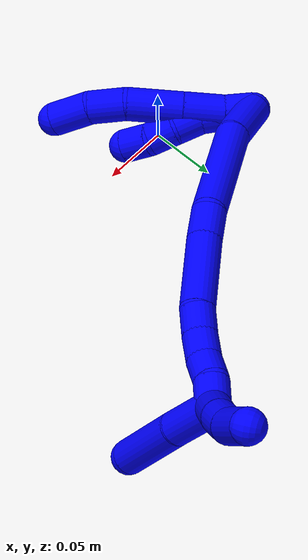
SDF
<sdf version="1.7">
 <world name="default">
  <model name="1">
   <static>0</static>
   <link name="1">
    <collision name="collision-cylinder-e_1_2_8">
     <pose>0.000308 0.004281 -0.009701 -2.72599 0.02908 -0.137713</pose>
     <geometry><cylinder><radius>0.0125</radius><length>0.021217</length></cylinder></geometry>
     <surface>
      <friction><ode><mu>1.16</mu><mu2>1.16</mu2><slip1>0</slip1><slip2>0</slip2></ode></friction>
      <contact><ode><kp>1e+06</kp><kd>1</kd><max_vel>0</max_vel><min_depth>0.001</min_depth></ode></contact>
     </surface>
    </collision>
    <visual name="visual-cylinder-e_1_2_8">
     <pose>0.000308 0.004281 -0.009701 -2.72599 0.02908 -0.137713</pose>
     <geometry><cylinder><radius>0.0125</radius><length>0.021217</length></cylinder></geometry>
     <material><ambient>0 0 1 1</ambient></material>
    </visual>
    <collision name="collision-cylinder-e_2_8_9">
     <pose>0.002566 0.012786 -0.033921 -2.85853 0.128222 -0.846643</pose>
     <geometry><cylinder><radius>0.0125</radius><length>0.03049</length></cylinder></geometry>
     <surface>
      <friction><ode><mu>1.16</mu><mu2>1.16</mu2><slip1>0</slip1><slip2>0</slip2></ode></friction>
      <contact><ode><kp>1e+06</kp><kd>1</kd><max_vel>0</max_vel><min_depth>0.001</min_depth></ode></contact>
     </surface>
    </collision>
    <visual name="visual-cylinder-e_2_8_9">
     <pose>0.002566 0.012786 -0.033921 -2.85853 0.128222 -0.846643</pose>
     <geometry><cylinder><radius>0.0125</radius><length>0.03049</length></cylinder></geometry>
     <material><ambient>0 0 1 1</ambient></material>
    </visual>
    <collision name="collision-cylinder-e_3_9_10">
     <pose>0.006511 0.022196 -0.06837 -2.88698 0.096578 -0.722016</pose>
     <geometry><cylinder><radius>0.0125</radius><length>0.041384</length></cylinder></geometry>
     <surface>
      <friction><ode><mu>1.16</mu><mu2>1.16</mu2><slip1>0</slip1><slip2>0</slip2></ode></friction>
      <contact><ode><kp>1e+06</kp><kd>1</kd><max_vel>0</max_vel><min_depth>0.001</min_depth></ode></contact>
     </surface>
    </collision>
    <visual name="visual-cylinder-e_3_9_10">
     <pose>0.006511 0.022196 -0.06837 -2.88698 0.096578 -0.722016</pose>
     <geometry><cylinder><radius>0.0125</radius><length>0.041384</length></cylinder></geometry>
     <material><ambient>0 0 1 1</ambient></material>
    </visual>
    <collision name="collision-cylinder-e_4_10_11">
     <pose>0.006267 0.030779 -0.101476 -2.88936 -0.163138 1.14539</pose>
     <geometry><cylinder><radius>0.0125</radius><length>0.027575</length></cylinder></geometry>
     <surface>
      <friction><ode><mu>1.16</mu><mu2>1.16</mu2><slip1>0</slip1><slip2>0</slip2></ode></friction>
      <contact><ode><kp>1e+06</kp><kd>1</kd><max_vel>0</max_vel><min_depth>0.001</min_depth></ode></contact>
     </surface>
    </collision>
    <visual name="visual-cylinder-e_4_10_11">
     <pose>0.006267 0.030779 -0.101476 -2.88936 -0.163138 1.14539</pose>
     <geometry><cylinder><radius>0.0125</radius><length>0.027575</length></cylinder></geometry>
     <material><ambient>0 0 1 1</ambient></material>
    </visual>
    <collision name="collision-cylinder-e_5_11_6">
     <pose>-0.00167 0.038332 -0.12751 -2.82888 -0.398996 1.81713</pose>
     <geometry><cylinder><radius>0.0125</radius><length>0.029334</length></cylinder></geometry>
     <surface>
      <friction><ode><mu>1.16</mu><mu2>1.16</mu2><slip1>0</slip1><slip2>0</slip2></ode></friction>
      <contact><ode><kp>1e+06</kp><kd>1</kd><max_vel>0</max_vel><min_depth>0.001</min_depth></ode></contact>
     </surface>
    </collision>
    <visual name="visual-cylinder-e_5_11_6">
     <pose>-0.00167 0.038332 -0.12751 -2.82888 -0.398996 1.81713</pose>
     <geometry><cylinder><radius>0.0125</radius><length>0.029334</length></cylinder></geometry>
     <material><ambient>0 0 1 1</ambient></material>
    </visual>
    <collision name="collision-cylinder-e_1_2_12">
     <pose>-0.001452 0.008024 -0.018074 -2.72379 -0.073289 0.342479</pose>
     <geometry><cylinder><radius>0.0125</radius><length>0.039657</length></cylinder></geometry>
     <surface>
      <friction><ode><mu>1.16</mu><mu2>1.16</mu2><slip1>0</slip1><slip2>0</slip2></ode></friction>
      <contact><ode><kp>1e+06</kp><kd>1</kd><max_vel>0</max_vel><min_depth>0.001</min_depth></ode></contact>
     </surface>
    </collision>
    <visual name="visual-cylinder-e_1_2_12">
     <pose>-0.001452 0.008024 -0.018074 -2.72379 -0.073289 0.342479</pose>
     <geometry><cylinder><radius>0.0125</radius><length>0.039657</length></cylinder></geometry>
     <material><ambient>0 0 1 1</ambient></material>
    </visual>
    <collision name="collision-cylinder-e_2_12_13">
     <pose>-0.004448 0.022405 -0.043884 -2.4537 -0.153009 0.421655</pose>
     <geometry><cylinder><radius>0.0125</radius><length>0.020264</length></cylinder></geometry>
     <surface>
      <friction><ode><mu>1.16</mu><mu2>1.16</mu2><slip1>0</slip1><slip2>0</slip2></ode></friction>
      <contact><ode><kp>1e+06</kp><kd>1</kd><max_vel>0</max_vel><min_depth>0.001</min_depth></ode></contact>
     </surface>
    </collision>
    <visual name="visual-cylinder-e_2_12_13">
     <pose>-0.004448 0.022405 -0.043884 -2.4537 -0.153009 0.421655</pose>
     <geometry><cylinder><radius>0.0125</radius><length>0.020264</length></cylinder></geometry>
     <material><ambient>0 0 1 1</ambient></material>
    </visual>
    <collision name="collision-cylinder-e_3_13_14">
     <pose>-0.009256 0.033583 -0.059777 -2.60784 -0.331798 1.09903</pose>
     <geometry><cylinder><radius>0.0125</radius><length>0.020041</length></cylinder></geometry>
     <surface>
      <friction><ode><mu>1.16</mu><mu2>1.16</mu2><slip1>0</slip1><slip2>0</slip2></ode></friction>
      <contact><ode><kp>1e+06</kp><kd>1</kd><max_vel>0</max_vel><min_depth>0.001</min_depth></ode></contact>
     </surface>
    </collision>
    <visual name="visual-cylinder-e_3_13_14">
     <pose>-0.009256 0.033583 -0.059777 -2.60784 -0.331798 1.09903</pose>
     <geometry><cylinder><radius>0.0125</radius><length>0.020041</length></cylinder></geometry>
     <material><ambient>0 0 1 1</ambient></material>
    </visual>
    <collision name="collision-cylinder-e_4_14_5">
     <pose>-0.016643 0.040254 -0.076875 -2.93745 -0.424098 2.25345</pose>
     <geometry><cylinder><radius>0.0125</radius><length>0.020039</length></cylinder></geometry>
     <surface>
      <friction><ode><mu>1.16</mu><mu2>1.16</mu2><slip1>0</slip1><slip2>0</slip2></ode></friction>
      <contact><ode><kp>1e+06</kp><kd>1</kd><max_vel>0</max_vel><min_depth>0.001</min_depth></ode></contact>
     </surface>
    </collision>
    <visual name="visual-cylinder-e_4_14_5">
     <pose>-0.016643 0.040254 -0.076875 -2.93745 -0.424098 2.25345</pose>
     <geometry><cylinder><radius>0.0125</radius><length>0.020039</length></cylinder></geometry>
     <material><ambient>0 0 1 1</ambient></material>
    </visual>
    <collision name="collision-cylinder-e_1_2_15">
     <pose>0.00766 0.021117 -0.001004 -1.61832 0.347623 -0.364187</pose>
     <geometry><cylinder><radius>0.0125</radius><length>0.044972</length></cylinder></geometry>
     <surface>
      <friction><ode><mu>1.16</mu><mu2>1.16</mu2><slip1>0</slip1><slip2>0</slip2></ode></friction>
      <contact><ode><kp>1e+06</kp><kd>1</kd><max_vel>0</max_vel><min_depth>0.001</min_depth></ode></contact>
     </surface>
    </collision>
    <visual name="visual-cylinder-e_1_2_15">
     <pose>0.00766 0.021117 -0.001004 -1.61832 0.347623 -0.364187</pose>
     <geometry><cylinder><radius>0.0125</radius><length>0.044972</length></cylinder></geometry>
     <material><ambient>0 0 1 1</ambient></material>
    </visual>
    <collision name="collision-cylinder-e_2_15_16">
     <pose>0.024633 0.086339 0.003876 -1.43816 0.206306 -0.180757</pose>
     <geometry><cylinder><radius>0.0125</radius><length>0.09092</length></cylinder></geometry>
     <surface>
      <friction><ode><mu>1.16</mu><mu2>1.16</mu2><slip1>0</slip1><slip2>0</slip2></ode></friction>
      <contact><ode><kp>1e+06</kp><kd>1</kd><max_vel>0</max_vel><min_depth>0.001</min_depth></ode></contact>
     </surface>
    </collision>
    <visual name="visual-cylinder-e_2_15_16">
     <pose>0.024633 0.086339 0.003876 -1.43816 0.206306 -0.180757</pose>
     <geometry><cylinder><radius>0.0125</radius><length>0.09092</length></cylinder></geometry>
     <material><ambient>0 0 1 1</ambient></material>
    </visual>
    <collision name="collision-cylinder-e_3_16_17">
     <pose>0.032575 0.142497 0.011861 -1.39824 -0.111543 0.093813</pose>
     <geometry><cylinder><radius>0.0125</radius><length>0.024621</length></cylinder></geometry>
     <surface>
      <friction><ode><mu>1.16</mu><mu2>1.16</mu2><slip1>0</slip1><slip2>0</slip2></ode></friction>
      <contact><ode><kp>1e+06</kp><kd>1</kd><max_vel>0</max_vel><min_depth>0.001</min_depth></ode></contact>
     </surface>
    </collision>
    <visual name="visual-cylinder-e_3_16_17">
     <pose>0.032575 0.142497 0.011861 -1.39824 -0.111543 0.093813</pose>
     <geometry><cylinder><radius>0.0125</radius><length>0.024621</length></cylinder></geometry>
     <material><ambient>0 0 1 1</ambient></material>
    </visual>
    <collision name="collision-cylinder-e_4_17_18">
     <pose>0.029732 0.18283 0.02065 -1.33858 -0.050631 0.040057</pose>
     <geometry><cylinder><radius>0.0125</radius><length>0.058198</length></cylinder></geometry>
     <surface>
      <friction><ode><mu>1.16</mu><mu2>1.16</mu2><slip1>0</slip1><slip2>0</slip2></ode></friction>
      <contact><ode><kp>1e+06</kp><kd>1</kd><max_vel>0</max_vel><min_depth>0.001</min_depth></ode></contact>
     </surface>
    </collision>
    <visual name="visual-cylinder-e_4_17_18">
     <pose>0.029732 0.18283 0.02065 -1.33858 -0.050631 0.040057</pose>
     <geometry><cylinder><radius>0.0125</radius><length>0.058198</length></cylinder></geometry>
     <material><ambient>0 0 1 1</ambient></material>
    </visual>
    <collision name="collision-cylinder-e_5_18_19">
     <pose>0.026328 0.220488 0.031204 -1.17969 -0.188149 0.12614</pose>
     <geometry><cylinder><radius>0.0125</radius><length>0.020648</length></cylinder></geometry>
     <surface>
      <friction><ode><mu>1.16</mu><mu2>1.16</mu2><slip1>0</slip1><slip2>0</slip2></ode></friction>
      <contact><ode><kp>1e+06</kp><kd>1</kd><max_vel>0</max_vel><min_depth>0.001</min_depth></ode></contact>
     </surface>
    </collision>
    <visual name="visual-cylinder-e_5_18_19">
     <pose>0.026328 0.220488 0.031204 -1.17969 -0.188149 0.12614</pose>
     <geometry><cylinder><radius>0.0125</radius><length>0.020648</length></cylinder></geometry>
     <material><ambient>0 0 1 1</ambient></material>
    </visual>
    <collision name="collision-cylinder-e_6_19_20">
     <pose>0.02365 0.238932 0.039505 -1.11598 -0.073852 0.046108</pose>
     <geometry><cylinder><radius>0.0125</radius><length>0.020245</length></cylinder></geometry>
     <surface>
      <friction><ode><mu>1.16</mu><mu2>1.16</mu2><slip1>0</slip1><slip2>0</slip2></ode></friction>
      <contact><ode><kp>1e+06</kp><kd>1</kd><max_vel>0</max_vel><min_depth>0.001</min_depth></ode></contact>
     </surface>
    </collision>
    <visual name="visual-cylinder-e_6_19_20">
     <pose>0.02365 0.238932 0.039505 -1.11598 -0.073852 0.046108</pose>
     <geometry><cylinder><radius>0.0125</radius><length>0.020245</length></cylinder></geometry>
     <material><ambient>0 0 1 1</ambient></material>
    </visual>
    <collision name="collision-cylinder-e_7_20_21">
     <pose>0.024231 0.256427 0.049273 -1.00646 0.132366 -0.072942</pose>
     <geometry><cylinder><radius>0.0125</radius><length>0.020121</length></cylinder></geometry>
     <surface>
      <friction><ode><mu>1.16</mu><mu2>1.16</mu2><slip1>0</slip1><slip2>0</slip2></ode></friction>
      <contact><ode><kp>1e+06</kp><kd>1</kd><max_vel>0</max_vel><min_depth>0.001</min_depth></ode></contact>
     </surface>
    </collision>
    <visual name="visual-cylinder-e_7_20_21">
     <pose>0.024231 0.256427 0.049273 -1.00646 0.132366 -0.072942</pose>
     <geometry><cylinder><radius>0.0125</radius><length>0.020121</length></cylinder></geometry>
     <material><ambient>0 0 1 1</ambient></material>
    </visual>
    <collision name="collision-cylinder-e_8_21_1">
     <pose>0.024601 0.274289 0.058188 -1.20806 -0.094561 0.06528</pose>
     <geometry><cylinder><radius>0.0125</radius><length>0.020276</length></cylinder></geometry>
     <surface>
      <friction><ode><mu>1.16</mu><mu2>1.16</mu2><slip1>0</slip1><slip2>0</slip2></ode></friction>
      <contact><ode><kp>1e+06</kp><kd>1</kd><max_vel>0</max_vel><min_depth>0.001</min_depth></ode></contact>
     </surface>
    </collision>
    <visual name="visual-cylinder-e_8_21_1">
     <pose>0.024601 0.274289 0.058188 -1.20806 -0.094561 0.06528</pose>
     <geometry><cylinder><radius>0.0125</radius><length>0.020276</length></cylinder></geometry>
     <material><ambient>0 0 1 1</ambient></material>
    </visual>
    <collision name="collision-cylinder-e_1_1_22">
     <pose>0.009019 0.285465 0.048503 -3.01116 -0.829846 2.84721</pose>
     <geometry><cylinder><radius>0.0125</radius><length>0.039645</length></cylinder></geometry>
     <surface>
      <friction><ode><mu>1.16</mu><mu2>1.16</mu2><slip1>0</slip1><slip2>0</slip2></ode></friction>
      <contact><ode><kp>1e+06</kp><kd>1</kd><max_vel>0</max_vel><min_depth>0.001</min_depth></ode></contact>
     </surface>
    </collision>
    <visual name="visual-cylinder-e_1_1_22">
     <pose>0.009019 0.285465 0.048503 -3.01116 -0.829846 2.84721</pose>
     <geometry><cylinder><radius>0.0125</radius><length>0.039645</length></cylinder></geometry>
     <material><ambient>0 0 1 1</ambient></material>
    </visual>
    <collision name="collision-cylinder-e_2_22_4">
     <pose>-0.029571 0.286894 0.016898 3.12462 -0.917526 -3.10724</pose>
     <geometry><cylinder><radius>0.0125</radius><length>0.060355</length></cylinder></geometry>
     <surface>
      <friction><ode><mu>1.16</mu><mu2>1.16</mu2><slip1>0</slip1><slip2>0</slip2></ode></friction>
      <contact><ode><kp>1e+06</kp><kd>1</kd><max_vel>0</max_vel><min_depth>0.001</min_depth></ode></contact>
     </surface>
    </collision>
    <visual name="visual-cylinder-e_2_22_4">
     <pose>-0.029571 0.286894 0.016898 3.12462 -0.917526 -3.10724</pose>
     <geometry><cylinder><radius>0.0125</radius><length>0.060355</length></cylinder></geometry>
     <material><ambient>0 0 1 1</ambient></material>
    </visual>
    <collision name="collision-cylinder-e_1_1_23">
     <pose>0.036538 0.295978 0.068453 -1.07144 0.74583 -0.456387</pose>
     <geometry><cylinder><radius>0.0125</radius><length>0.038003</length></cylinder></geometry>
     <surface>
      <friction><ode><mu>1.16</mu><mu2>1.16</mu2><slip1>0</slip1><slip2>0</slip2></ode></friction>
      <contact><ode><kp>1e+06</kp><kd>1</kd><max_vel>0</max_vel><min_depth>0.001</min_depth></ode></contact>
     </surface>
    </collision>
    <visual name="visual-cylinder-e_1_1_23">
     <pose>0.036538 0.295978 0.068453 -1.07144 0.74583 -0.456387</pose>
     <geometry><cylinder><radius>0.0125</radius><length>0.038003</length></cylinder></geometry>
     <material><ambient>0 0 1 1</ambient></material>
    </visual>
    <collision name="collision-cylinder-e_2_23_24">
     <pose>0.057053 0.316068 0.081137 -0.917381 0.657472 -0.333763</pose>
     <geometry><cylinder><radius>0.0125</radius><length>0.024941</length></cylinder></geometry>
     <surface>
      <friction><ode><mu>1.16</mu><mu2>1.16</mu2><slip1>0</slip1><slip2>0</slip2></ode></friction>
      <contact><ode><kp>1e+06</kp><kd>1</kd><max_vel>0</max_vel><min_depth>0.001</min_depth></ode></contact>
     </surface>
    </collision>
    <visual name="visual-cylinder-e_2_23_24">
     <pose>0.057053 0.316068 0.081137 -0.917381 0.657472 -0.333763</pose>
     <geometry><cylinder><radius>0.0125</radius><length>0.024941</length></cylinder></geometry>
     <material><ambient>0 0 1 1</ambient></material>
    </visual>
    <collision name="collision-cylinder-e_3_24_3">
     <pose>0.078585 0.331829 0.096466 -0.704112 0.849234 -0.329178</pose>
     <geometry><cylinder><radius>0.0125</radius><length>0.037056</length></cylinder></geometry>
     <surface>
      <friction><ode><mu>1.16</mu><mu2>1.16</mu2><slip1>0</slip1><slip2>0</slip2></ode></friction>
      <contact><ode><kp>1e+06</kp><kd>1</kd><max_vel>0</max_vel><min_depth>0.001</min_depth></ode></contact>
     </surface>
    </collision>
    <visual name="visual-cylinder-e_3_24_3">
     <pose>0.078585 0.331829 0.096466 -0.704112 0.849234 -0.329178</pose>
     <geometry><cylinder><radius>0.0125</radius><length>0.037056</length></cylinder></geometry>
     <material><ambient>0 0 1 1</ambient></material>
    </visual>
    <collision name="collision-sphere-3">
     <pose>0.092495 0.339752 0.105794 0 -0 0</pose>
     <geometry><sphere><radius>0.0125</radius></sphere></geometry>
     <surface>
      <friction><ode><mu>1.16</mu><mu2>1.16</mu2><slip1>0</slip1><slip2>0</slip2></ode></friction>
      <contact><ode><kp>1e+06</kp><kd>1</kd><max_vel>0</max_vel><min_depth>0.001</min_depth></ode></contact>
     </surface>
    </collision>
    <visual name="visual-sphere-3">
     <pose>0.092495 0.339752 0.105794 0 -0 0</pose>
     <geometry><sphere><radius>0.0125</radius></sphere></geometry>
     <material><ambient>0 0 1 1</ambient></material>
    </visual>
    <collision name="collision-sphere-24">
     <pose>0.064674 0.323906 0.087138 0 -0 0</pose>
     <geometry><sphere><radius>0.0125</radius></sphere></geometry>
     <surface>
      <friction><ode><mu>1.16</mu><mu2>1.16</mu2><slip1>0</slip1><slip2>0</slip2></ode></friction>
      <contact><ode><kp>1e+06</kp><kd>1</kd><max_vel>0</max_vel><min_depth>0.001</min_depth></ode></contact>
     </surface>
    </collision>
    <visual name="visual-sphere-24">
     <pose>0.064674 0.323906 0.087138 0 -0 0</pose>
     <geometry><sphere><radius>0.0125</radius></sphere></geometry>
     <material><ambient>0 0 1 1</ambient></material>
    </visual>
    <collision name="collision-sphere-23">
     <pose>0.049432 0.308231 0.075136 0 -0 0</pose>
     <geometry><sphere><radius>0.0125</radius></sphere></geometry>
     <surface>
      <friction><ode><mu>1.16</mu><mu2>1.16</mu2><slip1>0</slip1><slip2>0</slip2></ode></friction>
      <contact><ode><kp>1e+06</kp><kd>1</kd><max_vel>0</max_vel><min_depth>0.001</min_depth></ode></contact>
     </surface>
    </collision>
    <visual name="visual-sphere-23">
     <pose>0.049432 0.308231 0.075136 0 -0 0</pose>
     <geometry><sphere><radius>0.0125</radius></sphere></geometry>
     <material><ambient>0 0 1 1</ambient></material>
    </visual>
    <collision name="collision-sphere-4">
     <pose>-0.053535 0.286583 -0.001441 0 -0 0</pose>
     <geometry><sphere><radius>0.0125</radius></sphere></geometry>
     <surface>
      <friction><ode><mu>1.16</mu><mu2>1.16</mu2><slip1>0</slip1><slip2>0</slip2></ode></friction>
      <contact><ode><kp>1e+06</kp><kd>1</kd><max_vel>0</max_vel><min_depth>0.001</min_depth></ode></contact>
     </surface>
    </collision>
    <visual name="visual-sphere-4">
     <pose>-0.053535 0.286583 -0.001441 0 -0 0</pose>
     <geometry><sphere><radius>0.0125</radius></sphere></geometry>
     <material><ambient>0 0 1 1</ambient></material>
    </visual>
    <collision name="collision-sphere-22">
     <pose>-0.005607 0.287206 0.035237 0 -0 0</pose>
     <geometry><sphere><radius>0.0125</radius></sphere></geometry>
     <surface>
      <friction><ode><mu>1.16</mu><mu2>1.16</mu2><slip1>0</slip1><slip2>0</slip2></ode></friction>
      <contact><ode><kp>1e+06</kp><kd>1</kd><max_vel>0</max_vel><min_depth>0.001</min_depth></ode></contact>
     </surface>
    </collision>
    <visual name="visual-sphere-22">
     <pose>-0.005607 0.287206 0.035237 0 -0 0</pose>
     <geometry><sphere><radius>0.0125</radius></sphere></geometry>
     <material><ambient>0 0 1 1</ambient></material>
    </visual>
    <collision name="collision-sphere-1">
     <pose>0.023644 0.283725 0.06177 0 -0 0</pose>
     <geometry><sphere><radius>0.0125</radius></sphere></geometry>
     <surface>
      <friction><ode><mu>1.16</mu><mu2>1.16</mu2><slip1>0</slip1><slip2>0</slip2></ode></friction>
      <contact><ode><kp>1e+06</kp><kd>1</kd><max_vel>0</max_vel><min_depth>0.001</min_depth></ode></contact>
     </surface>
    </collision>
    <visual name="visual-sphere-1">
     <pose>0.023644 0.283725 0.06177 0 -0 0</pose>
     <geometry><sphere><radius>0.0125</radius></sphere></geometry>
     <material><ambient>0 0 1 1</ambient></material>
    </visual>
    <collision name="collision-sphere-21">
     <pose>0.025559 0.264853 0.054607 0 -0 0</pose>
     <geometry><sphere><radius>0.0125</radius></sphere></geometry>
     <surface>
      <friction><ode><mu>1.16</mu><mu2>1.16</mu2><slip1>0</slip1><slip2>0</slip2></ode></friction>
      <contact><ode><kp>1e+06</kp><kd>1</kd><max_vel>0</max_vel><min_depth>0.001</min_depth></ode></contact>
     </surface>
    </collision>
    <visual name="visual-sphere-21">
     <pose>0.025559 0.264853 0.054607 0 -0 0</pose>
     <geometry><sphere><radius>0.0125</radius></sphere></geometry>
     <material><ambient>0 0 1 1</ambient></material>
    </visual>
    <collision name="collision-sphere-6">
     <pose>-0.007368 0.042489 -0.140369 0 -0 0</pose>
     <geometry><sphere><radius>0.0125</radius></sphere></geometry>
     <surface>
      <friction><ode><mu>1.16</mu><mu2>1.16</mu2><slip1>0</slip1><slip2>0</slip2></ode></friction>
      <contact><ode><kp>1e+06</kp><kd>1</kd><max_vel>0</max_vel><min_depth>0.001</min_depth></ode></contact>
     </surface>
    </collision>
    <visual name="visual-sphere-6">
     <pose>-0.007368 0.042489 -0.140369 0 -0 0</pose>
     <geometry><sphere><radius>0.0125</radius></sphere></geometry>
     <material><ambient>0 0 1 1</ambient></material>
    </visual>
    <collision name="collision-sphere-11">
     <pose>0.004028 0.034174 -0.11465 0 -0 0</pose>
     <geometry><sphere><radius>0.0125</radius></sphere></geometry>
     <surface>
      <friction><ode><mu>1.16</mu><mu2>1.16</mu2><slip1>0</slip1><slip2>0</slip2></ode></friction>
      <contact><ode><kp>1e+06</kp><kd>1</kd><max_vel>0</max_vel><min_depth>0.001</min_depth></ode></contact>
     </surface>
    </collision>
    <visual name="visual-sphere-11">
     <pose>0.004028 0.034174 -0.11465 0 -0 0</pose>
     <geometry><sphere><radius>0.0125</radius></sphere></geometry>
     <material><ambient>0 0 1 1</ambient></material>
    </visual>
    <collision name="collision-sphere-10">
     <pose>0.008506 0.027383 -0.088302 0 -0 0</pose>
     <geometry><sphere><radius>0.0125</radius></sphere></geometry>
     <surface>
      <friction><ode><mu>1.16</mu><mu2>1.16</mu2><slip1>0</slip1><slip2>0</slip2></ode></friction>
      <contact><ode><kp>1e+06</kp><kd>1</kd><max_vel>0</max_vel><min_depth>0.001</min_depth></ode></contact>
     </surface>
    </collision>
    <visual name="visual-sphere-10">
     <pose>0.008506 0.027383 -0.088302 0 -0 0</pose>
     <geometry><sphere><radius>0.0125</radius></sphere></geometry>
     <material><ambient>0 0 1 1</ambient></material>
    </visual>
    <collision name="collision-sphere-9">
     <pose>0.004516 0.017009 -0.048439 0 -0 0</pose>
     <geometry><sphere><radius>0.0125</radius></sphere></geometry>
     <surface>
      <friction><ode><mu>1.16</mu><mu2>1.16</mu2><slip1>0</slip1><slip2>0</slip2></ode></friction>
      <contact><ode><kp>1e+06</kp><kd>1</kd><max_vel>0</max_vel><min_depth>0.001</min_depth></ode></contact>
     </surface>
    </collision>
    <visual name="visual-sphere-9">
     <pose>0.004516 0.017009 -0.048439 0 -0 0</pose>
     <geometry><sphere><radius>0.0125</radius></sphere></geometry>
     <material><ambient>0 0 1 1</ambient></material>
    </visual>
    <collision name="collision-sphere-2">
     <geometry><sphere><radius>0.0125</radius></sphere></geometry>
     <surface>
      <friction><ode><mu>1.16</mu><mu2>1.16</mu2><slip1>0</slip1><slip2>0</slip2></ode></friction>
      <contact><ode><kp>1e+06</kp><kd>1</kd><max_vel>0</max_vel><min_depth>0.001</min_depth></ode></contact>
     </surface>
    </collision>
    <visual name="visual-sphere-2">
     <geometry><sphere><radius>0.0125</radius></sphere></geometry>
     <material><ambient>0 0 1 1</ambient></material>
    </visual>
    <collision name="collision-sphere-19">
     <pose>0.024397 0.229864 0.03507 0 -0 0</pose>
     <geometry><sphere><radius>0.0125</radius></sphere></geometry>
     <surface>
      <friction><ode><mu>1.16</mu><mu2>1.16</mu2><slip1>0</slip1><slip2>0</slip2></ode></friction>
      <contact><ode><kp>1e+06</kp><kd>1</kd><max_vel>0</max_vel><min_depth>0.001</min_depth></ode></contact>
     </surface>
    </collision>
    <visual name="visual-sphere-19">
     <pose>0.024397 0.229864 0.03507 0 -0 0</pose>
     <geometry><sphere><radius>0.0125</radius></sphere></geometry>
     <material><ambient>0 0 1 1</ambient></material>
    </visual>
    <collision name="collision-sphere-8">
     <pose>0.000617 0.008563 -0.019403 0 -0 0</pose>
     <geometry><sphere><radius>0.0125</radius></sphere></geometry>
     <surface>
      <friction><ode><mu>1.16</mu><mu2>1.16</mu2><slip1>0</slip1><slip2>0</slip2></ode></friction>
      <contact><ode><kp>1e+06</kp><kd>1</kd><max_vel>0</max_vel><min_depth>0.001</min_depth></ode></contact>
     </surface>
    </collision>
    <visual name="visual-sphere-8">
     <pose>0.000617 0.008563 -0.019403 0 -0 0</pose>
     <geometry><sphere><radius>0.0125</radius></sphere></geometry>
     <material><ambient>0 0 1 1</ambient></material>
    </visual>
    <collision name="collision-sphere-12">
     <pose>-0.002904 0.016048 -0.036148 0 -0 0</pose>
     <geometry><sphere><radius>0.0125</radius></sphere></geometry>
     <surface>
      <friction><ode><mu>1.16</mu><mu2>1.16</mu2><slip1>0</slip1><slip2>0</slip2></ode></friction>
      <contact><ode><kp>1e+06</kp><kd>1</kd><max_vel>0</max_vel><min_depth>0.001</min_depth></ode></contact>
     </surface>
    </collision>
    <visual name="visual-sphere-12">
     <pose>-0.002904 0.016048 -0.036148 0 -0 0</pose>
     <geometry><sphere><radius>0.0125</radius></sphere></geometry>
     <material><ambient>0 0 1 1</ambient></material>
    </visual>
    <collision name="collision-sphere-13">
     <pose>-0.005992 0.028763 -0.051621 0 -0 0</pose>
     <geometry><sphere><radius>0.0125</radius></sphere></geometry>
     <surface>
      <friction><ode><mu>1.16</mu><mu2>1.16</mu2><slip1>0</slip1><slip2>0</slip2></ode></friction>
      <contact><ode><kp>1e+06</kp><kd>1</kd><max_vel>0</max_vel><min_depth>0.001</min_depth></ode></contact>
     </surface>
    </collision>
    <visual name="visual-sphere-13">
     <pose>-0.005992 0.028763 -0.051621 0 -0 0</pose>
     <geometry><sphere><radius>0.0125</radius></sphere></geometry>
     <material><ambient>0 0 1 1</ambient></material>
    </visual>
    <collision name="collision-sphere-14">
     <pose>-0.01252 0.038403 -0.067933 0 -0 0</pose>
     <geometry><sphere><radius>0.0125</radius></sphere></geometry>
     <surface>
      <friction><ode><mu>1.16</mu><mu2>1.16</mu2><slip1>0</slip1><slip2>0</slip2></ode></friction>
      <contact><ode><kp>1e+06</kp><kd>1</kd><max_vel>0</max_vel><min_depth>0.001</min_depth></ode></contact>
     </surface>
    </collision>
    <visual name="visual-sphere-14">
     <pose>-0.01252 0.038403 -0.067933 0 -0 0</pose>
     <geometry><sphere><radius>0.0125</radius></sphere></geometry>
     <material><ambient>0 0 1 1</ambient></material>
    </visual>
    <collision name="collision-sphere-5">
     <pose>-0.020766 0.042105 -0.085817 0 -0 0</pose>
     <geometry><sphere><radius>0.0125</radius></sphere></geometry>
     <surface>
      <friction><ode><mu>1.16</mu><mu2>1.16</mu2><slip1>0</slip1><slip2>0</slip2></ode></friction>
      <contact><ode><kp>1e+06</kp><kd>1</kd><max_vel>0</max_vel><min_depth>0.001</min_depth></ode></contact>
     </surface>
    </collision>
    <visual name="visual-sphere-5">
     <pose>-0.020766 0.042105 -0.085817 0 -0 0</pose>
     <geometry><sphere><radius>0.0125</radius></sphere></geometry>
     <material><ambient>0 0 1 1</ambient></material>
    </visual>
    <collision name="collision-sphere-15">
     <pose>0.01532 0.042234 -0.002009 0 -0 0</pose>
     <geometry><sphere><radius>0.0125</radius></sphere></geometry>
     <surface>
      <friction><ode><mu>1.16</mu><mu2>1.16</mu2><slip1>0</slip1><slip2>0</slip2></ode></friction>
      <contact><ode><kp>1e+06</kp><kd>1</kd><max_vel>0</max_vel><min_depth>0.001</min_depth></ode></contact>
     </surface>
    </collision>
    <visual name="visual-sphere-15">
     <pose>0.01532 0.042234 -0.002009 0 -0 0</pose>
     <geometry><sphere><radius>0.0125</radius></sphere></geometry>
     <material><ambient>0 0 1 1</ambient></material>
    </visual>
    <collision name="collision-sphere-16">
     <pose>0.033945 0.130444 0.00976 0 -0 0</pose>
     <geometry><sphere><radius>0.0125</radius></sphere></geometry>
     <surface>
      <friction><ode><mu>1.16</mu><mu2>1.16</mu2><slip1>0</slip1><slip2>0</slip2></ode></friction>
      <contact><ode><kp>1e+06</kp><kd>1</kd><max_vel>0</max_vel><min_depth>0.001</min_depth></ode></contact>
     </surface>
    </collision>
    <visual name="visual-sphere-16">
     <pose>0.033945 0.130444 0.00976 0 -0 0</pose>
     <geometry><sphere><radius>0.0125</radius></sphere></geometry>
     <material><ambient>0 0 1 1</ambient></material>
    </visual>
    <collision name="collision-sphere-17">
     <pose>0.031204 0.154549 0.013961 0 -0 0</pose>
     <geometry><sphere><radius>0.0125</radius></sphere></geometry>
     <surface>
      <friction><ode><mu>1.16</mu><mu2>1.16</mu2><slip1>0</slip1><slip2>0</slip2></ode></friction>
      <contact><ode><kp>1e+06</kp><kd>1</kd><max_vel>0</max_vel><min_depth>0.001</min_depth></ode></contact>
     </surface>
    </collision>
    <visual name="visual-sphere-17">
     <pose>0.031204 0.154549 0.013961 0 -0 0</pose>
     <geometry><sphere><radius>0.0125</radius></sphere></geometry>
     <material><ambient>0 0 1 1</ambient></material>
    </visual>
    <collision name="collision-sphere-18">
     <pose>0.028259 0.211112 0.027338 0 -0 0</pose>
     <geometry><sphere><radius>0.0125</radius></sphere></geometry>
     <surface>
      <friction><ode><mu>1.16</mu><mu2>1.16</mu2><slip1>0</slip1><slip2>0</slip2></ode></friction>
      <contact><ode><kp>1e+06</kp><kd>1</kd><max_vel>0</max_vel><min_depth>0.001</min_depth></ode></contact>
     </surface>
    </collision>
    <visual name="visual-sphere-18">
     <pose>0.028259 0.211112 0.027338 0 -0 0</pose>
     <geometry><sphere><radius>0.0125</radius></sphere></geometry>
     <material><ambient>0 0 1 1</ambient></material>
    </visual>
    <collision name="collision-sphere-20">
     <pose>0.022903 0.248001 0.043939 0 -0 0</pose>
     <geometry><sphere><radius>0.0125</radius></sphere></geometry>
     <surface>
      <friction><ode><mu>1.16</mu><mu2>1.16</mu2><slip1>0</slip1><slip2>0</slip2></ode></friction>
      <contact><ode><kp>1e+06</kp><kd>1</kd><max_vel>0</max_vel><min_depth>0.001</min_depth></ode></contact>
     </surface>
    </collision>
    <visual name="visual-sphere-20">
     <pose>0.022903 0.248001 0.043939 0 -0 0</pose>
     <geometry><sphere><radius>0.0125</radius></sphere></geometry>
     <material><ambient>0 0 1 1</ambient></material>
    </visual>
    <inertial>
     <pose>0.014977 0.144991 0.002142 0 -0 0</pose>
     <mass>0.75</mass>
     <inertia>
      <ixx>9.4e-05</ixx>
      <ixy>0</ixy>
      <ixz>0</ixz>
      <iyy>6.2e-05</iyy>
      <iyz>0</iyz>
      <izz>-0.000132</izz>
     </inertia>
    </inertial>
   </link>
   <pose>-0.045955 0.052577 0.035708 0.833742 -1.43243 -1.98136</pose>
  </model>
 </world>
</sdf>
